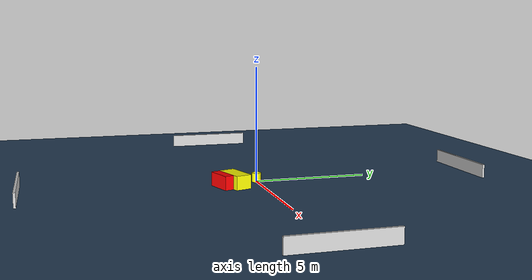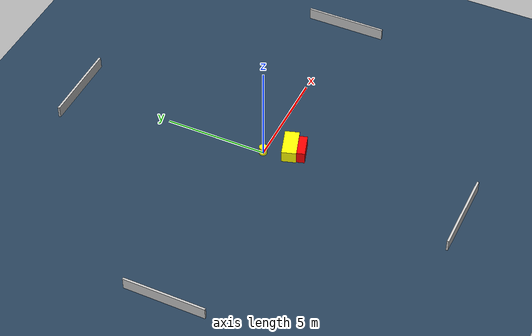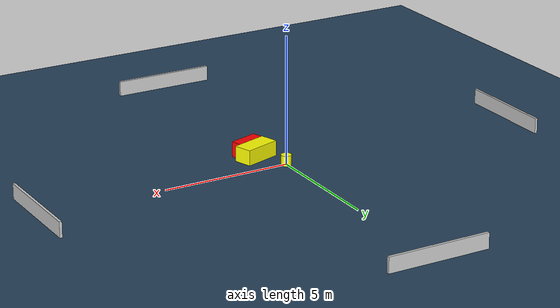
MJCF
<?xml version="1.0" ?>
<mujoco model="generated_environment">
  <option timestep="0.01" integrator="RK4" cone="elliptic"/>
  <default>
    <geom density="1"/>
  </default>
  <asset>
    <texture builtin="gradient" height="3072" name="skybox" rgb1="0.3 0.5 0.7" rgb2="0 0 0" type="skybox" width="512"/>
    <texture builtin="checker" height="300" name="groundplane" rgb1="0.2 0.3 0.4" rgb2="0.1 0.2 0.3" type="2d" width="300"/>
    <material name="groundplane" reflectance="0.2" texrepeat="5 5" texture="groundplane"/>
  </asset>
  <worldbody>
    <light dir="0 0 -1" directional="true" pos="0 0 1.5"/>
    <geom condim="3" friction="0.5 0.005 0.001" material="groundplane" name="floor" pos="0 0 0" size="0 0 0.05" type="plane"/>
    <body name="walls">
      <geom name="wall_1" condim="4" pos="-10.0 0.0 0.3" rgba="0.800000011920929 0.800000011920929 0.800000011920929 1.0" size="0.05 2.0 0.3" type="box"/>
      <geom name="wall_2" condim="4" pos="10.0 0.0 0.3" rgba="0.800000011920929 0.800000011920929 0.800000011920929 1.0" size="0.05 2.0 0.3" type="box"/>
      <geom name="wall_3" condim="4" pos="0.0 -10.0 0.3" rgba="0.800000011920929 0.800000011920929 0.800000011920929 1.0" size="2.0 0.05 0.3" type="box"/>
      <geom name="wall_4" condim="4" pos="0.0 10.0 0.3" rgba="0.800000011920929 0.800000011920929 0.800000011920929 1.0" size="2.0 0.05 0.3" type="box"/>
    </body>
    <body name="robot">
      <joint name="joint_x" type="slide" pos="0 0 0" axis="1 0 0"/>
      <joint name="joint_y" type="slide" pos="0 0 0" axis="0 1 0"/>
      <geom name="robot" type="cylinder" pos="0.0 0.0 0.2" size="0.2 0.2 0.0" mass="5.0" friction="1.0 0.005 0.0001" condim="4" rgba="1.0 1.0 0.0 1.0"/>
    </body>
    <body name="obstacle_1_movable">
      <geom name="obstacle_1_movable" condim="4" pos="0.6525474424075132 -1.1254259345407307 0.3" euler="0 0 287.4852735917016" friction="0.0 0.005 0.001" rgba="1.0 1.0 0.0 1.0" size="0.35573755645892835 0.7210239862731089 0.3" type="box" mass="0.1"/>
      <joint type="free"/>
    </body>
    <body name="obstacle_2_static">
      <geom name="obstacle_2_static" condim="4" pos="0.7206766758455271 -1.691015666942193 0.3" euler="0 0 287.32665035632635" friction="0.0 0.005 0.001" rgba="1.0 0.0 0.0 1.0" size="0.20257249863610483 0.5818044341588633 0.3" type="box"/>
    </body>
  </worldbody>
  <actuator>
    <motor name="actuator_x" joint="joint_x" gear="1" ctrlrange="-1 1"/>
    <motor name="actuator_y" joint="joint_y" gear="1" ctrlrange="-1 1"/>
  </actuator>
</mujoco>
